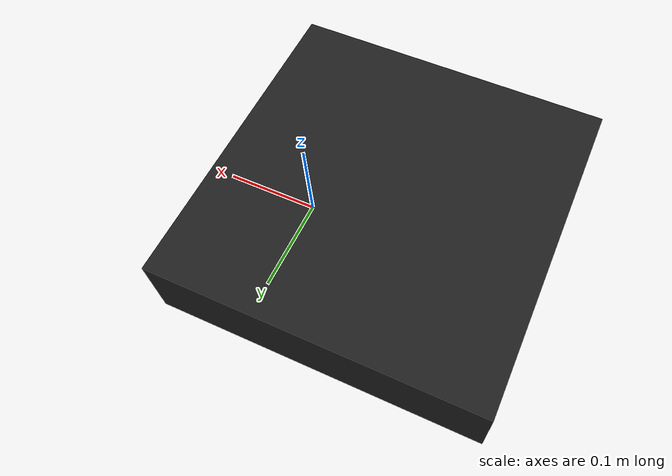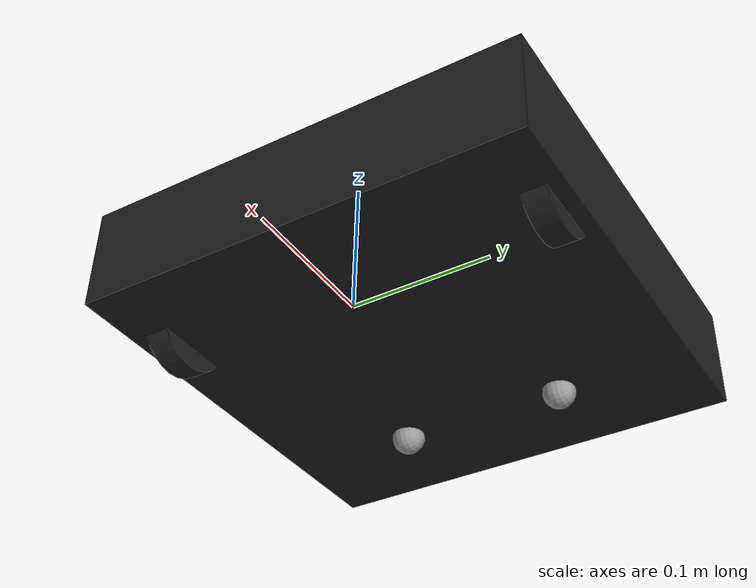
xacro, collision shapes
<?xml version="1.0" ?>
<robot xmlns:xacro="http://ros.org/wiki/xacro">

  <link name="base_footprint"/>

  <joint name="base_joint" type="fixed">
    <parent link="base_footprint"/>
    <child link="base_link"/>
    <origin xyz="0 0 0.015" rpy="0 0 0"/>
  </joint>

  <link name="base_link">
    <visual>
      <origin xyz="-0.089 0 0" rpy="0 0 0"/>
      <geometry>
        <mesh filename="package://jupiterobot2_description/meshes/stacks/jupiter2_base.stl" scale="0.001 0.001 0.001"/>
      </geometry>
      <material name="Black"/>
    </visual>
    <collision>
      <origin xyz="-0.089 0 0.039" rpy="0 0 0"/>
      <geometry>
        <box size="0.33 0.33 0.078"/>
      </geometry>
    </collision>
    <inertial>
      <origin xyz="-0.089 0 0.039" rpy="0 0 0"/>
      <mass value="4.6"/>
      <inertia ixx="0.0440772" ixy="0" ixz="0"
               iyy="0.0440772" iyz="0"
               izz="0.08349" />
    </inertial>
  </link>

  <joint name="wheel_left_joint" type="continuous">
    <parent link="base_link"/>
    <child link="wheel_left_link"/>
    <origin xyz="0.0 0.144 0.018" rpy="${-M_PI/2} 0 0"/>
    <axis xyz="0 0 1"/>
  </joint>

  <link name="wheel_left_link">
    <visual>
      <origin xyz="0 0 0" rpy="${M_PI/2} 0 0"/>
      <geometry>
        <mesh filename="package://jupiterobot2_description/meshes/wheels/left_tire.stl" scale="0.001 0.001 0.001"/>
      </geometry>
      <material name="FlatBlack"/>
    </visual>
    <collision>
      <origin xyz="0 0 0" rpy="0 0 0"/>
      <geometry>
        <cylinder length="0.018" radius="0.033"/>
      </geometry>
    </collision>
    <inertial>
      <origin xyz="0 0 0" />
      <mass value="0.03" />
      <inertia ixx="9e-06" ixy="0.0" ixz="0.0"
               iyy="9e-06" iyz="0.0"
               izz="1.64e-05" />
      </inertial>
  </link>

  <joint name="wheel_right_joint" type="continuous">
    <parent link="base_link"/>
    <child link="wheel_right_link"/>
    <origin xyz="0.0 -0.144 0.018" rpy="${-M_PI/2} 0 0"/>
    <axis xyz="0 0 1"/>
  </joint>

  <link name="wheel_right_link">
    <visual>
      <origin xyz="0 0 0" rpy="${M_PI/2} 0 0"/>
      <geometry>
        <mesh filename="package://jupiterobot2_description/meshes/wheels/right_tire.stl" scale="0.001 0.001 0.001"/>
      </geometry>
      <material name="FlatBlack"/>
    </visual>
    <collision>
      <origin xyz="0 0 0" rpy="0 0 0"/>
      <geometry>
        <cylinder length="0.018" radius="0.033"/>
      </geometry>
    </collision>
    <inertial>
      <origin xyz="0 0 0" />
      <mass value="0.03" />
      <inertia ixx="9e-06" ixy="0.0" ixz="0.0"
               iyy="9e-06" iyz="0.0"
               izz="1.64e-05" />
      </inertial>
  </link>

  <joint name="caster_back_right_joint" type="fixed">
    <parent link="base_link"/>
    <child link="caster_back_right_link"/>
    <origin xyz="-0.177 -0.064 -0.0025" rpy="${-M_PI/2} 0 0"/>
  </joint>

  <link name="caster_back_right_link">
    <visual>
      <origin xyz="0 0 0" rpy="0 0 0"/>
      <geometry>
        <mesh filename="package://jupiterobot2_description/meshes/wheels/caster.stl" scale="0.001 0.001 0.001"/>
      </geometry>
      <material name="Grey"/>
    </visual>
    <collision>
      <origin xyz="0 0 0" rpy="0 0 0"/>
      <geometry>
        <sphere radius="0.0125"/>
      </geometry>
    </collision>
    <inertial>
      <origin xyz="0 0 0" />
      <mass value="0.065" />
      <inertia ixx="4.0625e-06" ixy="0.0" ixz="0.0"
               iyy="4.0625e-06" iyz="0.0"
               izz="4.0625e-06" />
    </inertial>
  </link>

  <joint name="caster_back_left_joint" type="fixed">
    <parent link="base_link"/>
    <child link="caster_back_left_link"/>
    <origin xyz="-0.177 0.064 -0.0025" rpy="${-M_PI/2} 0 0"/>
  </joint>

  <link name="caster_back_left_link">
    <visual>
      <origin xyz="0 0 0" rpy="0 0 0"/>
      <geometry>
        <mesh filename="package://jupiterobot2_description/meshes/wheels/caster.stl" scale="0.001 0.001 0.001"/>
      </geometry>
      <material name="Grey"/>
    </visual>
    <collision>
      <origin xyz="0 0 0" rpy="0 0 0"/>
      <geometry>
        <sphere radius="0.0125"/>
      </geometry>
    </collision>
    <inertial>
      <origin xyz="0 0 0" />
      <mass value="0.065" />
      <inertia ixx="4.0625e-06" ixy="0.0" ixz="0.0"
               iyy="4.0625e-06" iyz="0.0"
               izz="4.0625e-06" />
    </inertial>
  </link>

  <joint name="imu_joint" type="fixed">
    <parent link="base_link"/>
    <child link="imu_link"/>
    <origin xyz="-0.091 -0.1055 0.0535" rpy="${M_PI} 0 0"/>
  </joint>

  <link name="imu_link"/>

  <!-- base link for stacks -->
  <joint name="stack_joint" type="fixed">
    <parent link="base_link"/>
    <child link="stack_link"/>
    <origin xyz="-0.089 0 0" rpy="0 0 0"/>
  </joint>

  <link name="stack_link"/>

</robot>
